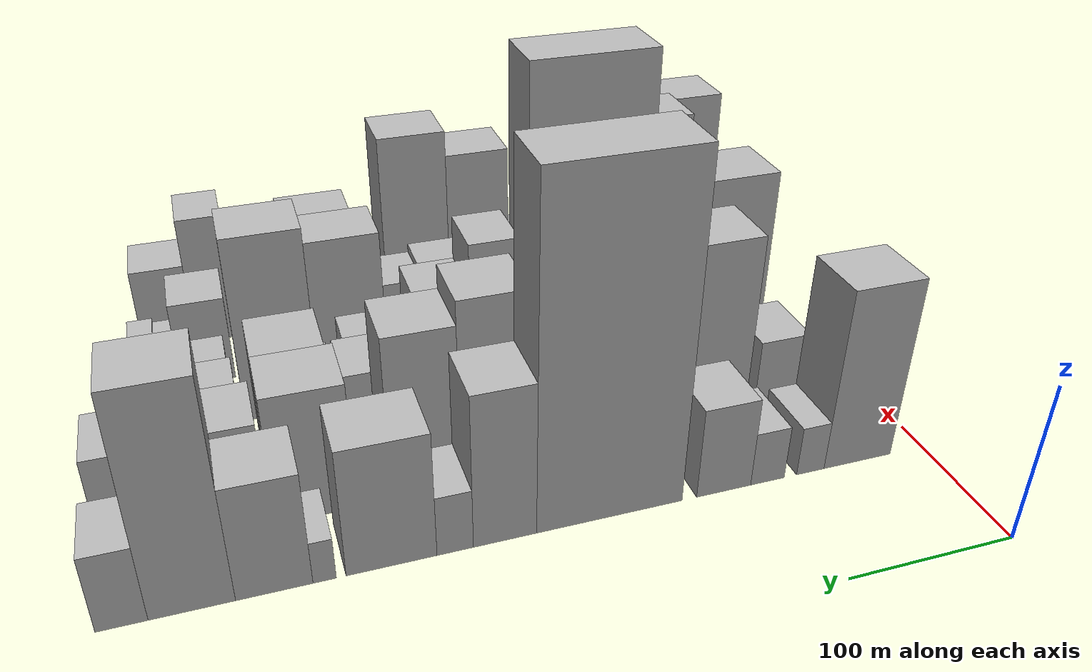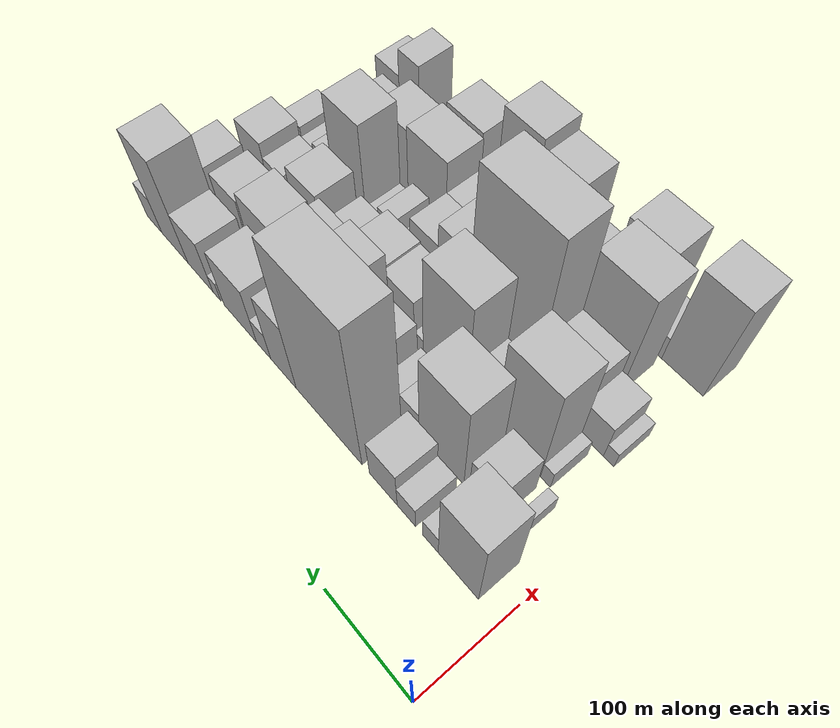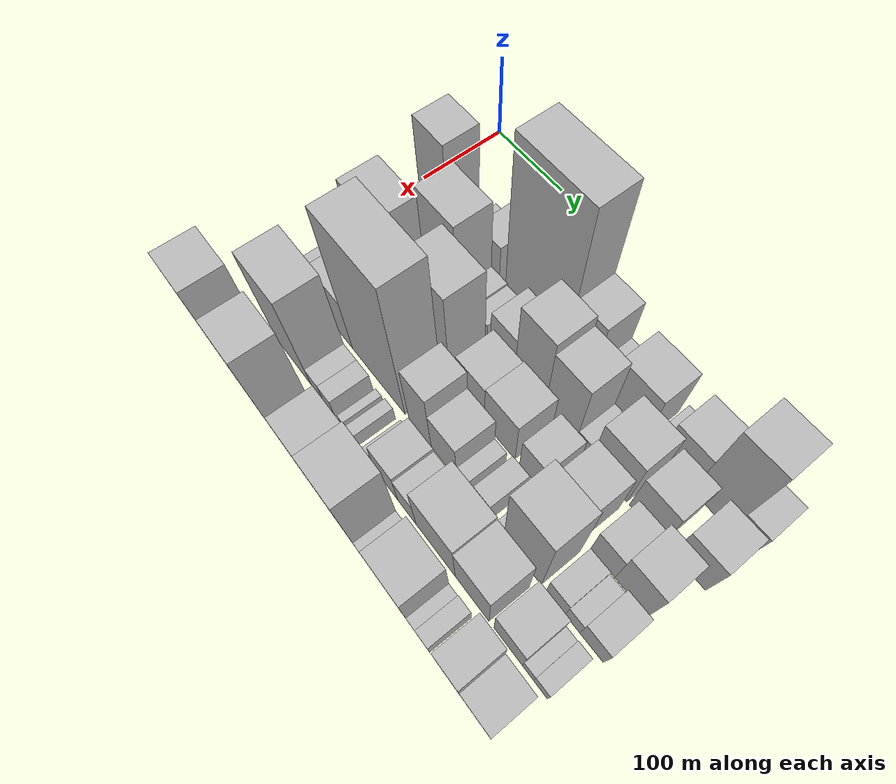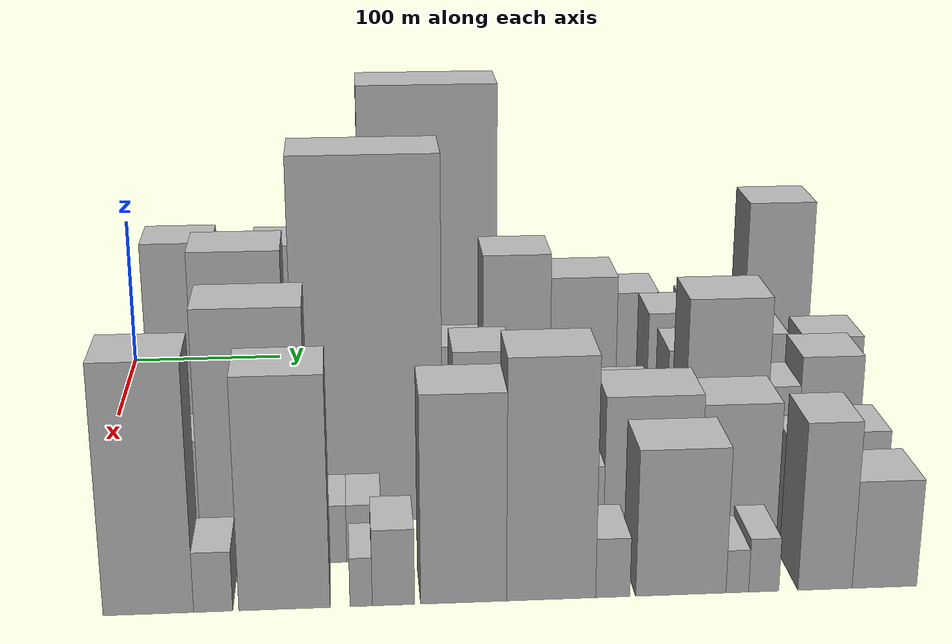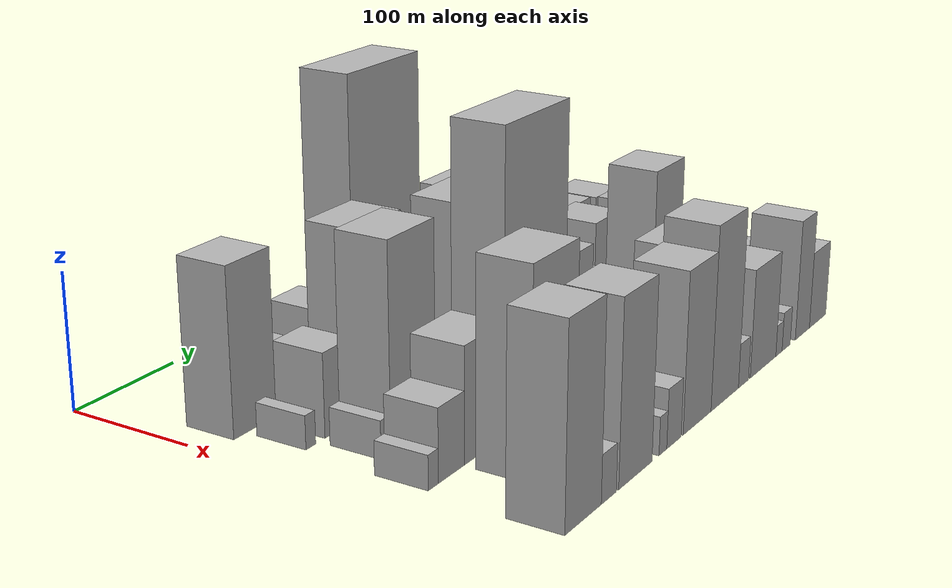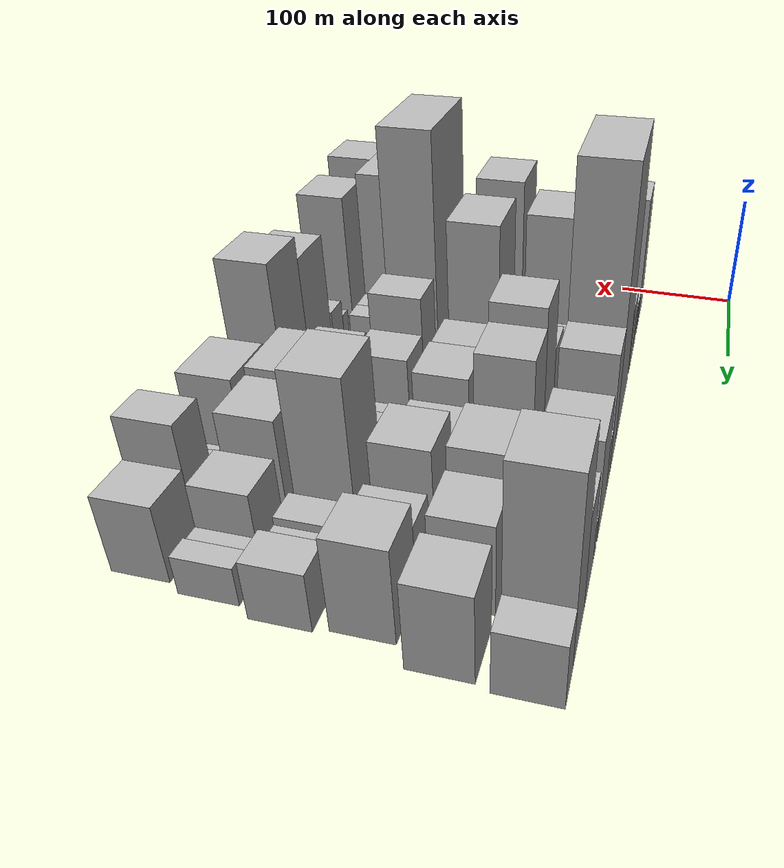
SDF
<sdf version="1.6">
 <world name="default">
  <model name="building_26">
   <static>1</static>
   <pose>100.0000 44.2382 0 0.000000 0.000000 0.000000</pose>
   <link name="link">
    <pose>0 0 60.00 0 0 0</pose>
    <collision name="collision"><geometry><box><size>40.0000 44.2251 120.0000</size></box></geometry></collision>
    <visual name="visual">
     <cast_shadows>0</cast_shadows>
     <geometry><box><size>40.0000 44.2251 120.0000</size></box></geometry>
     <material>
      <script>
       <uri>model://HANNAS_wall/materials/scripts</uri>
       <uri>model://HANNAS_wall/materials/textures</uri>
       <name>vrc/HANNAS_wall</name>
      </script>
     </material>
    </visual>
   </link>
  </model>
  <model name="building_27">
   <static>1</static>
   <pose>100.0000 75.2839 0 0.000000 0.000000 0.000000</pose>
   <link name="link">
    <pose>0 0 16.50 0 0 0</pose>
    <collision name="collision"><geometry><box><size>40.0000 17.8664 33.0000</size></box></geometry></collision>
    <visual name="visual">
     <cast_shadows>0</cast_shadows>
     <geometry><box><size>40.0000 17.8664 33.0000</size></box></geometry>
     <material>
      <script>
       <uri>model://HANNAS_wall/materials/scripts</uri>
       <uri>model://HANNAS_wall/materials/textures</uri>
       <name>vrc/HANNAS_wall</name>
      </script>
     </material>
    </visual>
   </link>
  </model>
  <model name="building_28">
   <static>1</static>
   <pose>100.0000 102.9447 0 0.000000 0.000000 0.000000</pose>
   <link name="link">
    <pose>0 0 18.00 0 0 0</pose>
    <collision name="collision"><geometry><box><size>40.0000 21.4551 36.0000</size></box></geometry></collision>
    <visual name="visual">
     <cast_shadows>0</cast_shadows>
     <geometry><box><size>40.0000 21.4551 36.0000</size></box></geometry>
     <material>
      <script>
       <uri>model://HANNAS_wall/materials/scripts</uri>
       <uri>model://HANNAS_wall/materials/textures</uri>
       <name>vrc/HANNAS_wall</name>
      </script>
     </material>
    </visual>
   </link>
  </model>
  <model name="building_29">
   <static>1</static>
   <pose>100.0000 130.4869 0 0.000000 0.000000 0.000000</pose>
   <link name="link">
    <pose>0 0 30.00 0 0 0</pose>
    <collision name="collision"><geometry><box><size>40.0000 33.6293 60.0000</size></box></geometry></collision>
    <visual name="visual">
     <cast_shadows>0</cast_shadows>
     <geometry><box><size>40.0000 33.6293 60.0000</size></box></geometry>
     <material>
      <script>
       <uri>model://HANNAS_wall/materials/scripts</uri>
       <uri>model://HANNAS_wall/materials/textures</uri>
       <name>vrc/HANNAS_wall</name>
      </script>
     </material>
    </visual>
   </link>
  </model>
  <model name="building_30">
   <static>1</static>
   <pose>100.0000 199.0506 0 0.000000 0.000000 0.000000</pose>
   <link name="link">
    <pose>0 0 108.00 0 0 0</pose>
    <collision name="collision"><geometry><box><size>40.0000 85.4979 216.0000</size></box></geometry></collision>
    <visual name="visual">
     <cast_shadows>0</cast_shadows>
     <geometry><box><size>40.0000 85.4979 216.0000</size></box></geometry>
     <material>
      <script>
       <uri>model://HANNAS_wall/materials/scripts</uri>
       <uri>model://HANNAS_wall/materials/textures</uri>
       <name>vrc/HANNAS_wall</name>
      </script>
     </material>
    </visual>
   </link>
  </model>
  <model name="building_31">
   <static>1</static>
   <pose>100.0000 259.4269 0 0.000000 0.000000 0.000000</pose>
   <link name="link">
    <pose>0 0 49.50 0 0 0</pose>
    <collision name="collision"><geometry><box><size>40.0000 35.2547 99.0000</size></box></geometry></collision>
    <visual name="visual">
     <cast_shadows>0</cast_shadows>
     <geometry><box><size>40.0000 35.2547 99.0000</size></box></geometry>
     <material>
      <script>
       <uri>model://HANNAS_wall/materials/scripts</uri>
       <uri>model://HANNAS_wall/materials/textures</uri>
       <name>vrc/HANNAS_wall</name>
      </script>
     </material>
    </visual>
   </link>
  </model>
  <model name="building_32">
   <static>1</static>
   <pose>100.0000 286.9620 0 0.000000 0.000000 0.000000</pose>
   <link name="link">
    <pose>0 0 19.50 0 0 0</pose>
    <collision name="collision"><geometry><box><size>40.0000 19.8156 39.0000</size></box></geometry></collision>
    <visual name="visual">
     <cast_shadows>0</cast_shadows>
     <geometry><box><size>40.0000 19.8156 39.0000</size></box></geometry>
     <material>
      <script>
       <uri>model://HANNAS_wall/materials/scripts</uri>
       <uri>model://HANNAS_wall/materials/textures</uri>
       <name>vrc/HANNAS_wall</name>
      </script>
     </material>
    </visual>
   </link>
  </model>
  <model name="building_33">
   <static>1</static>
   <pose>100.0000 320.8729 0 0.000000 0.000000 0.000000</pose>
   <link name="link">
    <pose>0 0 40.50 0 0 0</pose>
    <collision name="collision"><geometry><box><size>40.0000 48.0063 81.0000</size></box></geometry></collision>
    <visual name="visual">
     <cast_shadows>0</cast_shadows>
     <geometry><box><size>40.0000 48.0063 81.0000</size></box></geometry>
     <material>
      <script>
       <uri>model://HANNAS_wall/materials/scripts</uri>
       <uri>model://HANNAS_wall/materials/textures</uri>
       <name>vrc/HANNAS_wall</name>
      </script>
     </material>
    </visual>
   </link>
  </model>
  <model name="building_34">
   <static>1</static>
   <pose>100.0000 355.8433 0 0.000000 0.000000 0.000000</pose>
   <link name="link">
    <pose>0 0 13.50 0 0 0</pose>
    <collision name="collision"><geometry><box><size>40.0000 11.9346 27.0000</size></box></geometry></collision>
    <visual name="visual">
     <cast_shadows>0</cast_shadows>
     <geometry><box><size>40.0000 11.9346 27.0000</size></box></geometry>
     <material>
      <script>
       <uri>model://HANNAS_wall/materials/scripts</uri>
       <uri>model://HANNAS_wall/materials/textures</uri>
       <name>vrc/HANNAS_wall</name>
      </script>
     </material>
    </visual>
   </link>
  </model>
  <model name="building_35">
   <static>1</static>
   <pose>100.0000 381.1490 0 0.000000 0.000000 0.000000</pose>
   <link name="link">
    <pose>0 0 36.00 0 0 0</pose>
    <collision name="collision"><geometry><box><size>40.0000 38.6768 72.0000</size></box></geometry></collision>
    <visual name="visual">
     <cast_shadows>0</cast_shadows>
     <geometry><box><size>40.0000 38.6768 72.0000</size></box></geometry>
     <material>
      <script>
       <uri>model://HANNAS_wall/materials/scripts</uri>
       <uri>model://HANNAS_wall/materials/textures</uri>
       <name>vrc/HANNAS_wall</name>
      </script>
     </material>
    </visual>
   </link>
  </model>
  <model name="building_36">
   <static>1</static>
   <pose>100.0000 421.5169 0 0.000000 0.000000 0.000000</pose>
   <link name="link">
    <pose>0 0 69.00 0 0 0</pose>
    <collision name="collision"><geometry><box><size>40.0000 42.0590 138.0000</size></box></geometry></collision>
    <visual name="visual">
     <cast_shadows>0</cast_shadows>
     <geometry><box><size>40.0000 42.0590 138.0000</size></box></geometry>
     <material>
      <script>
       <uri>model://HANNAS_wall/materials/scripts</uri>
       <uri>model://HANNAS_wall/materials/textures</uri>
       <name>vrc/HANNAS_wall</name>
      </script>
     </material>
    </visual>
   </link>
  </model>
  <model name="building_37">
   <static>1</static>
   <pose>100.0000 454.9248 0 0.000000 0.000000 0.000000</pose>
   <link name="link">
    <pose>0 0 24.00 0 0 0</pose>
    <collision name="collision"><geometry><box><size>40.0000 24.7566 48.0000</size></box></geometry></collision>
    <visual name="visual">
     <cast_shadows>0</cast_shadows>
     <geometry><box><size>40.0000 24.7566 48.0000</size></box></geometry>
     <material>
      <script>
       <uri>model://HANNAS_wall/materials/scripts</uri>
       <uri>model://HANNAS_wall/materials/textures</uri>
       <name>vrc/HANNAS_wall</name>
      </script>
     </material>
    </visual>
   </link>
  </model>
  <model name="building_72">
   <static>1</static>
   <pose>149.0000 39.9696 0 0.000000 0.000000 0.000000</pose>
   <link name="link">
    <pose>0 0 12.00 0 0 0</pose>
    <collision name="collision"><geometry><box><size>40.0000 10.4345 24.0000</size></box></geometry></collision>
    <visual name="visual">
     <cast_shadows>0</cast_shadows>
     <geometry><box><size>40.0000 10.4345 24.0000</size></box></geometry>
     <material>
      <script>
       <uri>model://HANNAS_wall/materials/scripts</uri>
       <uri>model://HANNAS_wall/materials/textures</uri>
       <name>vrc/HANNAS_wall</name>
      </script>
     </material>
    </visual>
   </link>
  </model>
  <model name="building_73">
   <static>1</static>
   <pose>149.0000 71.1524 0 0.000000 0.000000 0.000000</pose>
   <link name="link">
    <pose>0 0 30.00 0 0 0</pose>
    <collision name="collision"><geometry><box><size>40.0000 31.9312 60.0000</size></box></geometry></collision>
    <visual name="visual">
     <cast_shadows>0</cast_shadows>
     <geometry><box><size>40.0000 31.9312 60.0000</size></box></geometry>
     <material>
      <script>
       <uri>model://HANNAS_wall/materials/scripts</uri>
       <uri>model://HANNAS_wall/materials/textures</uri>
       <name>vrc/HANNAS_wall</name>
      </script>
     </material>
    </visual>
   </link>
  </model>
  <model name="building_74">
   <static>1</static>
   <pose>149.0000 119.4645 0 0.000000 0.000000 0.000000</pose>
   <link name="link">
    <pose>0 0 66.00 0 0 0</pose>
    <collision name="collision"><geometry><box><size>40.0000 52.6929 132.0000</size></box></geometry></collision>
    <visual name="visual">
     <cast_shadows>0</cast_shadows>
     <geometry><box><size>40.0000 52.6929 132.0000</size></box></geometry>
     <material>
      <script>
       <uri>model://HANNAS_wall/materials/scripts</uri>
       <uri>model://HANNAS_wall/materials/textures</uri>
       <name>vrc/HANNAS_wall</name>
      </script>
     </material>
    </visual>
   </link>
  </model>
  <model name="building_75">
   <static>1</static>
   <pose>149.0000 157.3110 0 0.000000 0.000000 0.000000</pose>
   <link name="link">
    <pose>0 0 19.50 0 0 0</pose>
    <collision name="collision"><geometry><box><size>40.0000 23.0002 39.0000</size></box></geometry></collision>
    <visual name="visual">
     <cast_shadows>0</cast_shadows>
     <geometry><box><size>40.0000 23.0002 39.0000</size></box></geometry>
     <material>
      <script>
       <uri>model://HANNAS_wall/materials/scripts</uri>
       <uri>model://HANNAS_wall/materials/textures</uri>
       <name>vrc/HANNAS_wall</name>
      </script>
     </material>
    </visual>
   </link>
  </model>
  <model name="building_76">
   <static>1</static>
   <pose>149.0000 179.4420 0 0.000000 0.000000 0.000000</pose>
   <link name="link">
    <pose>0 0 18.00 0 0 0</pose>
    <collision name="collision"><geometry><box><size>40.0000 21.2617 36.0000</size></box></geometry></collision>
    <visual name="visual">
     <cast_shadows>0</cast_shadows>
     <geometry><box><size>40.0000 21.2617 36.0000</size></box></geometry>
     <material>
      <script>
       <uri>model://HANNAS_wall/materials/scripts</uri>
       <uri>model://HANNAS_wall/materials/textures</uri>
       <name>vrc/HANNAS_wall</name>
      </script>
     </material>
    </visual>
   </link>
  </model>
  <model name="building_77">
   <static>1</static>
   <pose>149.0000 212.1974 0 0.000000 0.000000 0.000000</pose>
   <link name="link">
    <pose>0 0 33.00 0 0 0</pose>
    <collision name="collision"><geometry><box><size>40.0000 34.2491 66.0000</size></box></geometry></collision>
    <visual name="visual">
     <cast_shadows>0</cast_shadows>
     <geometry><box><size>40.0000 34.2491 66.0000</size></box></geometry>
     <material>
      <script>
       <uri>model://HANNAS_wall/materials/scripts</uri>
       <uri>model://HANNAS_wall/materials/textures</uri>
       <name>vrc/HANNAS_wall</name>
      </script>
     </material>
    </visual>
   </link>
  </model>
  <model name="building_78">
   <static>1</static>
   <pose>149.0000 249.8704 0 0.000000 0.000000 0.000000</pose>
   <link name="link">
    <pose>0 0 61.50 0 0 0</pose>
    <collision name="collision"><geometry><box><size>40.0000 41.0969 123.0000</size></box></geometry></collision>
    <visual name="visual">
     <cast_shadows>0</cast_shadows>
     <geometry><box><size>40.0000 41.0969 123.0000</size></box></geometry>
     <material>
      <script>
       <uri>model://HANNAS_wall/materials/scripts</uri>
       <uri>model://HANNAS_wall/materials/textures</uri>
       <name>vrc/HANNAS_wall</name>
      </script>
     </material>
    </visual>
   </link>
  </model>
  <model name="building_79">
   <static>1</static>
   <pose>149.0000 290.5923 0 0.000000 0.000000 0.000000</pose>
   <link name="link">
    <pose>0 0 54.00 0 0 0</pose>
    <collision name="collision"><geometry><box><size>40.0000 40.3469 108.0000</size></box></geometry></collision>
    <visual name="visual">
     <cast_shadows>0</cast_shadows>
     <geometry><box><size>40.0000 40.3469 108.0000</size></box></geometry>
     <material>
      <script>
       <uri>model://HANNAS_wall/materials/scripts</uri>
       <uri>model://HANNAS_wall/materials/textures</uri>
       <name>vrc/HANNAS_wall</name>
      </script>
     </material>
    </visual>
   </link>
  </model>
  <model name="building_80">
   <static>1</static>
   <pose>149.0000 318.9877 0 0.000000 0.000000 0.000000</pose>
   <link name="link">
    <pose>0 0 15.00 0 0 0</pose>
    <collision name="collision"><geometry><box><size>40.0000 16.4439 30.0000</size></box></geometry></collision>
    <visual name="visual">
     <cast_shadows>0</cast_shadows>
     <geometry><box><size>40.0000 16.4439 30.0000</size></box></geometry>
     <material>
      <script>
       <uri>model://HANNAS_wall/materials/scripts</uri>
       <uri>model://HANNAS_wall/materials/textures</uri>
       <name>vrc/HANNAS_wall</name>
      </script>
     </material>
    </visual>
   </link>
  </model>
  <model name="building_81">
   <static>1</static>
   <pose>149.0000 352.4718 0 0.000000 0.000000 0.000000</pose>
   <link name="link">
    <pose>0 0 42.00 0 0 0</pose>
    <collision name="collision"><geometry><box><size>40.0000 44.5243 84.0000</size></box></geometry></collision>
    <visual name="visual">
     <cast_shadows>0</cast_shadows>
     <geometry><box><size>40.0000 44.5243 84.0000</size></box></geometry>
     <material>
      <script>
       <uri>model://HANNAS_wall/materials/scripts</uri>
       <uri>model://HANNAS_wall/materials/textures</uri>
       <name>vrc/HANNAS_wall</name>
      </script>
     </material>
    </visual>
   </link>
  </model>
  <model name="building_82">
   <static>1</static>
   <pose>149.0000 397.2652 0 0.000000 0.000000 0.000000</pose>
   <link name="link">
    <pose>0 0 34.50 0 0 0</pose>
    <collision name="collision"><geometry><box><size>40.0000 39.0626 69.0000</size></box></geometry></collision>
    <visual name="visual">
     <cast_shadows>0</cast_shadows>
     <geometry><box><size>40.0000 39.0626 69.0000</size></box></geometry>
     <material>
      <script>
       <uri>model://HANNAS_wall/materials/scripts</uri>
       <uri>model://HANNAS_wall/materials/textures</uri>
       <name>vrc/HANNAS_wall</name>
      </script>
     </material>
    </visual>
   </link>
  </model>
  <model name="building_83">
   <static>1</static>
   <pose>149.0000 445.3738 0 0.000000 0.000000 0.000000</pose>
   <link name="link">
    <pose>0 0 33.00 0 0 0</pose>
    <collision name="collision"><geometry><box><size>40.0000 37.1547 66.0000</size></box></geometry></collision>
    <visual name="visual">
     <cast_shadows>0</cast_shadows>
     <geometry><box><size>40.0000 37.1547 66.0000</size></box></geometry>
     <material>
      <script>
       <uri>model://HANNAS_wall/materials/scripts</uri>
       <uri>model://HANNAS_wall/materials/textures</uri>
       <name>vrc/HANNAS_wall</name>
      </script>
     </material>
    </visual>
   </link>
  </model>
  <model name="building_121">
   <static>1</static>
   <pose>198.0000 54.0162 0 0.000000 0.000000 0.000000</pose>
   <link name="link">
    <pose>0 0 13.50 0 0 0</pose>
    <collision name="collision"><geometry><box><size>40.0000 10.9247 27.0000</size></box></geometry></collision>
    <visual name="visual">
     <cast_shadows>0</cast_shadows>
     <geometry><box><size>40.0000 10.9247 27.0000</size></box></geometry>
     <material>
      <script>
       <uri>model://HANNAS_wall/materials/scripts</uri>
       <uri>model://HANNAS_wall/materials/textures</uri>
       <name>vrc/HANNAS_wall</name>
      </script>
     </material>
    </visual>
   </link>
  </model>
  <model name="building_122">
   <static>1</static>
   <pose>198.0000 85.5409 0 0.000000 0.000000 0.000000</pose>
   <link name="link">
    <pose>0 0 72.00 0 0 0</pose>
    <collision name="collision"><geometry><box><size>40.0000 52.1247 144.0000</size></box></geometry></collision>
    <visual name="visual">
     <cast_shadows>0</cast_shadows>
     <geometry><box><size>40.0000 52.1247 144.0000</size></box></geometry>
     <material>
      <script>
       <uri>model://HANNAS_wall/materials/scripts</uri>
       <uri>model://HANNAS_wall/materials/textures</uri>
       <name>vrc/HANNAS_wall</name>
      </script>
     </material>
    </visual>
   </link>
  </model>
  <model name="building_123">
   <static>1</static>
   <pose>198.0000 128.0849 0 0.000000 0.000000 0.000000</pose>
   <link name="link">
    <pose>0 0 28.50 0 0 0</pose>
    <collision name="collision"><geometry><box><size>40.0000 32.9634 57.0000</size></box></geometry></collision>
    <visual name="visual">
     <cast_shadows>0</cast_shadows>
     <geometry><box><size>40.0000 32.9634 57.0000</size></box></geometry>
     <material>
      <script>
       <uri>model://HANNAS_wall/materials/scripts</uri>
       <uri>model://HANNAS_wall/materials/textures</uri>
       <name>vrc/HANNAS_wall</name>
      </script>
     </material>
    </visual>
   </link>
  </model>
  <model name="building_124">
   <static>1</static>
   <pose>198.0000 171.6224 0 0.000000 0.000000 0.000000</pose>
   <link name="link">
    <pose>0 0 72.00 0 0 0</pose>
    <collision name="collision"><geometry><box><size>40.0000 54.1117 144.0000</size></box></geometry></collision>
    <visual name="visual">
     <cast_shadows>0</cast_shadows>
     <geometry><box><size>40.0000 54.1117 144.0000</size></box></geometry>
     <material>
      <script>
       <uri>model://HANNAS_wall/materials/scripts</uri>
       <uri>model://HANNAS_wall/materials/textures</uri>
       <name>vrc/HANNAS_wall</name>
      </script>
     </material>
    </visual>
   </link>
  </model>
  <model name="building_125">
   <static>1</static>
   <pose>198.0000 204.1205 0 0.000000 0.000000 0.000000</pose>
   <link name="link">
    <pose>0 0 12.00 0 0 0</pose>
    <collision name="collision"><geometry><box><size>40.0000 10.8845 24.0000</size></box></geometry></collision>
    <visual name="visual">
     <cast_shadows>0</cast_shadows>
     <geometry><box><size>40.0000 10.8845 24.0000</size></box></geometry>
     <material>
      <script>
       <uri>model://HANNAS_wall/materials/scripts</uri>
       <uri>model://HANNAS_wall/materials/textures</uri>
       <name>vrc/HANNAS_wall</name>
      </script>
     </material>
    </visual>
   </link>
  </model>
  <model name="building_126">
   <static>1</static>
   <pose>198.0000 228.8530 0 0.000000 0.000000 0.000000</pose>
   <link name="link">
    <pose>0 0 34.50 0 0 0</pose>
    <collision name="collision"><geometry><box><size>40.0000 38.5804 69.0000</size></box></geometry></collision>
    <visual name="visual">
     <cast_shadows>0</cast_shadows>
     <geometry><box><size>40.0000 38.5804 69.0000</size></box></geometry>
     <material>
      <script>
       <uri>model://HANNAS_wall/materials/scripts</uri>
       <uri>model://HANNAS_wall/materials/textures</uri>
       <name>vrc/HANNAS_wall</name>
      </script>
     </material>
    </visual>
   </link>
  </model>
  <model name="building_127">
   <static>1</static>
   <pose>198.0000 268.8048 0 0.000000 0.000000 0.000000</pose>
   <link name="link">
    <pose>0 0 36.00 0 0 0</pose>
    <collision name="collision"><geometry><box><size>40.0000 41.3231 72.0000</size></box></geometry></collision>
    <visual name="visual">
     <cast_shadows>0</cast_shadows>
     <geometry><box><size>40.0000 41.3231 72.0000</size></box></geometry>
     <material>
      <script>
       <uri>model://HANNAS_wall/materials/scripts</uri>
       <uri>model://HANNAS_wall/materials/textures</uri>
       <name>vrc/HANNAS_wall</name>
      </script>
     </material>
    </visual>
   </link>
  </model>
  <model name="building_128">
   <static>1</static>
   <pose>198.0000 310.6774 0 0.000000 0.000000 0.000000</pose>
   <link name="link">
    <pose>0 0 27.00 0 0 0</pose>
    <collision name="collision"><geometry><box><size>40.0000 30.4222 54.0000</size></box></geometry></collision>
    <visual name="visual">
     <cast_shadows>0</cast_shadows>
     <geometry><box><size>40.0000 30.4222 54.0000</size></box></geometry>
     <material>
      <script>
       <uri>model://HANNAS_wall/materials/scripts</uri>
       <uri>model://HANNAS_wall/materials/textures</uri>
       <name>vrc/HANNAS_wall</name>
      </script>
     </material>
    </visual>
   </link>
  </model>
  <model name="building_129">
   <static>1</static>
   <pose>198.0000 354.2839 0 0.000000 0.000000 0.000000</pose>
   <link name="link">
    <pose>0 0 39.00 0 0 0</pose>
    <collision name="collision"><geometry><box><size>40.0000 40.7909 78.0000</size></box></geometry></collision>
    <visual name="visual">
     <cast_shadows>0</cast_shadows>
     <geometry><box><size>40.0000 40.7909 78.0000</size></box></geometry>
     <material>
      <script>
       <uri>model://HANNAS_wall/materials/scripts</uri>
       <uri>model://HANNAS_wall/materials/textures</uri>
       <name>vrc/HANNAS_wall</name>
      </script>
     </material>
    </visual>
   </link>
  </model>
  <model name="building_130">
   <static>1</static>
   <pose>198.0000 398.8235 0 0.000000 0.000000 0.000000</pose>
   <link name="link">
    <pose>0 0 27.00 0 0 0</pose>
    <collision name="collision"><geometry><box><size>40.0000 28.2882 54.0000</size></box></geometry></collision>
    <visual name="visual">
     <cast_shadows>0</cast_shadows>
     <geometry><box><size>40.0000 28.2882 54.0000</size></box></geometry>
     <material>
      <script>
       <uri>model://HANNAS_wall/materials/scripts</uri>
       <uri>model://HANNAS_wall/materials/textures</uri>
       <name>vrc/HANNAS_wall</name>
      </script>
     </material>
    </visual>
   </link>
  </model>
  <model name="building_131">
   <static>1</static>
   <pose>198.0000 431.4522 0 0.000000 0.000000 0.000000</pose>
   <link name="link">
    <pose>0 0 36.00 0 0 0</pose>
    <collision name="collision"><geometry><box><size>40.0000 36.9694 72.0000</size></box></geometry></collision>
    <visual name="visual">
     <cast_shadows>0</cast_shadows>
     <geometry><box><size>40.0000 36.9694 72.0000</size></box></geometry>
     <material>
      <script>
       <uri>model://HANNAS_wall/materials/scripts</uri>
       <uri>model://HANNAS_wall/materials/textures</uri>
       <name>vrc/HANNAS_wall</name>
      </script>
     </material>
    </visual>
   </link>
  </model>
  <model name="building_170">
   <static>1</static>
   <pose>247.0000 34.1251 0 0.000000 0.000000 0.000000</pose>
   <link name="link">
    <pose>0 0 12.00 0 0 0</pose>
    <collision name="collision"><geometry><box><size>40.0000 11.2859 24.0000</size></box></geometry></collision>
    <visual name="visual">
     <cast_shadows>0</cast_shadows>
     <geometry><box><size>40.0000 11.2859 24.0000</size></box></geometry>
     <material>
      <script>
       <uri>model://HANNAS_wall/materials/scripts</uri>
       <uri>model://HANNAS_wall/materials/textures</uri>
       <name>vrc/HANNAS_wall</name>
      </script>
     </material>
    </visual>
   </link>
  </model>
  <model name="building_171">
   <static>1</static>
   <pose>247.0000 54.7830 0 0.000000 0.000000 0.000000</pose>
   <link name="link">
    <pose>0 0 25.50 0 0 0</pose>
    <collision name="collision"><geometry><box><size>40.0000 30.0299 51.0000</size></box></geometry></collision>
    <visual name="visual">
     <cast_shadows>0</cast_shadows>
     <geometry><box><size>40.0000 30.0299 51.0000</size></box></geometry>
     <material>
      <script>
       <uri>model://HANNAS_wall/materials/scripts</uri>
       <uri>model://HANNAS_wall/materials/textures</uri>
       <name>vrc/HANNAS_wall</name>
      </script>
     </material>
    </visual>
   </link>
  </model>
  <model name="building_172">
   <static>1</static>
   <pose>247.0000 93.7772 0 0.000000 0.000000 0.000000</pose>
   <link name="link">
    <pose>0 0 40.50 0 0 0</pose>
    <collision name="collision"><geometry><box><size>40.0000 47.9586 81.0000</size></box></geometry></collision>
    <visual name="visual">
     <cast_shadows>0</cast_shadows>
     <geometry><box><size>40.0000 47.9586 81.0000</size></box></geometry>
     <material>
      <script>
       <uri>model://HANNAS_wall/materials/scripts</uri>
       <uri>model://HANNAS_wall/materials/textures</uri>
       <name>vrc/HANNAS_wall</name>
      </script>
     </material>
    </visual>
   </link>
  </model>
  <model name="building_173">
   <static>1</static>
   <pose>247.0000 158.3695 0 0.000000 0.000000 0.000000</pose>
   <link name="link">
    <pose>0 0 105.00 0 0 0</pose>
    <collision name="collision"><geometry><box><size>40.0000 81.2261 210.0000</size></box></geometry></collision>
    <visual name="visual">
     <cast_shadows>0</cast_shadows>
     <geometry><box><size>40.0000 81.2261 210.0000</size></box></geometry>
     <material>
      <script>
       <uri>model://HANNAS_wall/materials/scripts</uri>
       <uri>model://HANNAS_wall/materials/textures</uri>
       <name>vrc/HANNAS_wall</name>
      </script>
     </material>
    </visual>
   </link>
  </model>
  <model name="building_174">
   <static>1</static>
   <pose>247.0000 221.1196 0 0.000000 0.000000 0.000000</pose>
   <link name="link">
    <pose>0 0 49.50 0 0 0</pose>
    <collision name="collision"><geometry><box><size>40.0000 32.2741 99.0000</size></box></geometry></collision>
    <visual name="visual">
     <cast_shadows>0</cast_shadows>
     <geometry><box><size>40.0000 32.2741 99.0000</size></box></geometry>
     <material>
      <script>
       <uri>model://HANNAS_wall/materials/scripts</uri>
       <uri>model://HANNAS_wall/materials/textures</uri>
       <name>vrc/HANNAS_wall</name>
      </script>
     </material>
    </visual>
   </link>
  </model>
  <model name="building_175">
   <static>1</static>
   <pose>247.0000 255.0591 0 0.000000 0.000000 0.000000</pose>
   <link name="link">
    <pose>0 0 34.50 0 0 0</pose>
    <collision name="collision"><geometry><box><size>40.0000 35.6047 69.0000</size></box></geometry></collision>
    <visual name="visual">
     <cast_shadows>0</cast_shadows>
     <geometry><box><size>40.0000 35.6047 69.0000</size></box></geometry>
     <material>
      <script>
       <uri>model://HANNAS_wall/materials/scripts</uri>
       <uri>model://HANNAS_wall/materials/textures</uri>
       <name>vrc/HANNAS_wall</name>
      </script>
     </material>
    </visual>
   </link>
  </model>
  <model name="building_176">
   <static>1</static>
   <pose>247.0000 280.5952 0 0.000000 0.000000 0.000000</pose>
   <link name="link">
    <pose>0 0 15.00 0 0 0</pose>
    <collision name="collision"><geometry><box><size>40.0000 15.4675 30.0000</size></box></geometry></collision>
    <visual name="visual">
     <cast_shadows>0</cast_shadows>
     <geometry><box><size>40.0000 15.4675 30.0000</size></box></geometry>
     <material>
      <script>
       <uri>model://HANNAS_wall/materials/scripts</uri>
       <uri>model://HANNAS_wall/materials/textures</uri>
       <name>vrc/HANNAS_wall</name>
      </script>
     </material>
    </visual>
   </link>
  </model>
  <model name="building_177">
   <static>1</static>
   <pose>247.0000 305.8933 0 0.000000 0.000000 0.000000</pose>
   <link name="link">
    <pose>0 0 19.50 0 0 0</pose>
    <collision name="collision"><geometry><box><size>40.0000 21.1286 39.0000</size></box></geometry></collision>
    <visual name="visual">
     <cast_shadows>0</cast_shadows>
     <geometry><box><size>40.0000 21.1286 39.0000</size></box></geometry>
     <material>
      <script>
       <uri>model://HANNAS_wall/materials/scripts</uri>
       <uri>model://HANNAS_wall/materials/textures</uri>
       <name>vrc/HANNAS_wall</name>
      </script>
     </material>
    </visual>
   </link>
  </model>
  <model name="building_178">
   <static>1</static>
   <pose>247.0000 329.6236 0 0.000000 0.000000 0.000000</pose>
   <link name="link">
    <pose>0 0 10.50 0 0 0</pose>
    <collision name="collision"><geometry><box><size>40.0000 10.3320 21.0000</size></box></geometry></collision>
    <visual name="visual">
     <cast_shadows>0</cast_shadows>
     <geometry><box><size>40.0000 10.3320 21.0000</size></box></geometry>
     <material>
      <script>
       <uri>model://HANNAS_wall/materials/scripts</uri>
       <uri>model://HANNAS_wall/materials/textures</uri>
       <name>vrc/HANNAS_wall</name>
      </script>
     </material>
    </visual>
   </link>
  </model>
  <model name="building_179">
   <static>1</static>
   <pose>247.0000 357.9925 0 0.000000 0.000000 0.000000</pose>
   <link name="link">
    <pose>0 0 63.00 0 0 0</pose>
    <collision name="collision"><geometry><box><size>40.0000 46.4057 126.0000</size></box></geometry></collision>
    <visual name="visual">
     <cast_shadows>0</cast_shadows>
     <geometry><box><size>40.0000 46.4057 126.0000</size></box></geometry>
     <material>
      <script>
       <uri>model://HANNAS_wall/materials/scripts</uri>
       <uri>model://HANNAS_wall/materials/textures</uri>
       <name>vrc/HANNAS_wall</name>
      </script>
     </material>
    </visual>
   </link>
  </model>
  <model name="building_180">
   <static>1</static>
   <pose>247.0000 398.4443 0 0.000000 0.000000 0.000000</pose>
   <link name="link">
    <pose>0 0 19.50 0 0 0</pose>
    <collision name="collision"><geometry><box><size>40.0000 22.4980 39.0000</size></box></geometry></collision>
    <visual name="visual">
     <cast_shadows>0</cast_shadows>
     <geometry><box><size>40.0000 22.4980 39.0000</size></box></geometry>
     <material>
      <script>
       <uri>model://HANNAS_wall/materials/scripts</uri>
       <uri>model://HANNAS_wall/materials/textures</uri>
       <name>vrc/HANNAS_wall</name>
      </script>
     </material>
    </visual>
   </link>
  </model>
  <model name="building_181">
   <static>1</static>
   <pose>247.0000 418.0349 0 0.000000 0.000000 0.000000</pose>
   <link name="link">
    <pose>0 0 16.50 0 0 0</pose>
    <collision name="collision"><geometry><box><size>40.0000 16.6831 33.0000</size></box></geometry></collision>
    <visual name="visual">
     <cast_shadows>0</cast_shadows>
     <geometry><box><size>40.0000 16.6831 33.0000</size></box></geometry>
     <material>
      <script>
       <uri>model://HANNAS_wall/materials/scripts</uri>
       <uri>model://HANNAS_wall/materials/textures</uri>
       <name>vrc/HANNAS_wall</name>
      </script>
     </material>
    </visual>
   </link>
  </model>
  <model name="building_182">
   <static>1</static>
   <pose>247.0000 439.6375 0 0.000000 0.000000 0.000000</pose>
   <link name="link">
    <pose>0 0 22.50 0 0 0</pose>
    <collision name="collision"><geometry><box><size>40.0000 26.5220 45.0000</size></box></geometry></collision>
    <visual name="visual">
     <cast_shadows>0</cast_shadows>
     <geometry><box><size>40.0000 26.5220 45.0000</size></box></geometry>
     <material>
      <script>
       <uri>model://HANNAS_wall/materials/scripts</uri>
       <uri>model://HANNAS_wall/materials/textures</uri>
       <name>vrc/HANNAS_wall</name>
      </script>
     </material>
    </visual>
   </link>
  </model>
  <model name="building_220">
   <static>1</static>
   <pose>296.0000 97.0826 0 0.000000 0.000000 0.000000</pose>
   <link name="link">
    <pose>0 0 72.00 0 0 0</pose>
    <collision name="collision"><geometry><box><size>40.0000 56.8154 144.0000</size></box></geometry></collision>
    <visual name="visual">
     <cast_shadows>0</cast_shadows>
     <geometry><box><size>40.0000 56.8154 144.0000</size></box></geometry>
     <material>
      <script>
       <uri>model://HANNAS_wall/materials/scripts</uri>
       <uri>model://HANNAS_wall/materials/textures</uri>
       <name>vrc/HANNAS_wall</name>
      </script>
     </material>
    </visual>
   </link>
  </model>
  <model name="building_221">
   <static>1</static>
   <pose>296.0000 135.3702 0 0.000000 0.000000 0.000000</pose>
   <link name="link">
    <pose>0 0 16.50 0 0 0</pose>
    <collision name="collision"><geometry><box><size>40.0000 19.7597 33.0000</size></box></geometry></collision>
    <visual name="visual">
     <cast_shadows>0</cast_shadows>
     <geometry><box><size>40.0000 19.7597 33.0000</size></box></geometry>
     <material>
      <script>
       <uri>model://HANNAS_wall/materials/scripts</uri>
       <uri>model://HANNAS_wall/materials/textures</uri>
       <name>vrc/HANNAS_wall</name>
      </script>
     </material>
    </visual>
   </link>
  </model>
  <model name="building_222">
   <static>1</static>
   <pose>296.0000 154.5468 0 0.000000 0.000000 0.000000</pose>
   <link name="link">
    <pose>0 0 16.50 0 0 0</pose>
    <collision name="collision"><geometry><box><size>40.0000 18.5936 33.0000</size></box></geometry></collision>
    <visual name="visual">
     <cast_shadows>0</cast_shadows>
     <geometry><box><size>40.0000 18.5936 33.0000</size></box></geometry>
     <material>
      <script>
       <uri>model://HANNAS_wall/materials/scripts</uri>
       <uri>model://HANNAS_wall/materials/textures</uri>
       <name>vrc/HANNAS_wall</name>
      </script>
     </material>
    </visual>
   </link>
  </model>
  <model name="building_223">
   <static>1</static>
   <pose>296.0000 175.1823 0 0.000000 0.000000 0.000000</pose>
   <link name="link">
    <pose>0 0 9.00 0 0 0</pose>
    <collision name="collision"><geometry><box><size>40.0000 8.6774 18.0000</size></box></geometry></collision>
    <visual name="visual">
     <cast_shadows>0</cast_shadows>
     <geometry><box><size>40.0000 8.6774 18.0000</size></box></geometry>
     <material>
      <script>
       <uri>model://HANNAS_wall/materials/scripts</uri>
       <uri>model://HANNAS_wall/materials/textures</uri>
       <name>vrc/HANNAS_wall</name>
      </script>
     </material>
    </visual>
   </link>
  </model>
  <model name="building_224">
   <static>1</static>
   <pose>296.0000 191.4687 0 0.000000 0.000000 0.000000</pose>
   <link name="link">
    <pose>0 0 12.00 0 0 0</pose>
    <collision name="collision"><geometry><box><size>40.0000 11.8956 24.0000</size></box></geometry></collision>
    <visual name="visual">
     <cast_shadows>0</cast_shadows>
     <geometry><box><size>40.0000 11.8956 24.0000</size></box></geometry>
     <material>
      <script>
       <uri>model://HANNAS_wall/materials/scripts</uri>
       <uri>model://HANNAS_wall/materials/textures</uri>
       <name>vrc/HANNAS_wall</name>
      </script>
     </material>
    </visual>
   </link>
  </model>
  <model name="building_225">
   <static>1</static>
   <pose>296.0000 211.7931 0 0.000000 0.000000 0.000000</pose>
   <link name="link">
    <pose>0 0 9.00 0 0 0</pose>
    <collision name="collision"><geometry><box><size>40.0000 8.7532 18.0000</size></box></geometry></collision>
    <visual name="visual">
     <cast_shadows>0</cast_shadows>
     <geometry><box><size>40.0000 8.7532 18.0000</size></box></geometry>
     <material>
      <script>
       <uri>model://HANNAS_wall/materials/scripts</uri>
       <uri>model://HANNAS_wall/materials/textures</uri>
       <name>vrc/HANNAS_wall</name>
      </script>
     </material>
    </visual>
   </link>
  </model>
  <model name="building_226">
   <static>1</static>
   <pose>296.0000 240.5442 0 0.000000 0.000000 0.000000</pose>
   <link name="link">
    <pose>0 0 28.50 0 0 0</pose>
    <collision name="collision"><geometry><box><size>40.0000 32.7490 57.0000</size></box></geometry></collision>
    <visual name="visual">
     <cast_shadows>0</cast_shadows>
     <geometry><box><size>40.0000 32.7490 57.0000</size></box></geometry>
     <material>
      <script>
       <uri>model://HANNAS_wall/materials/scripts</uri>
       <uri>model://HANNAS_wall/materials/textures</uri>
       <name>vrc/HANNAS_wall</name>
      </script>
     </material>
    </visual>
   </link>
  </model>
  <model name="building_227">
   <static>1</static>
   <pose>296.0000 269.7926 0 0.000000 0.000000 0.000000</pose>
   <link name="link">
    <pose>0 0 25.50 0 0 0</pose>
    <collision name="collision"><geometry><box><size>40.0000 25.7480 51.0000</size></box></geometry></collision>
    <visual name="visual">
     <cast_shadows>0</cast_shadows>
     <geometry><box><size>40.0000 25.7480 51.0000</size></box></geometry>
     <material>
      <script>
       <uri>model://HANNAS_wall/materials/scripts</uri>
       <uri>model://HANNAS_wall/materials/textures</uri>
       <name>vrc/HANNAS_wall</name>
      </script>
     </material>
    </visual>
   </link>
  </model>
  <model name="building_228">
   <static>1</static>
   <pose>296.0000 308.7418 0 0.000000 0.000000 0.000000</pose>
   <link name="link">
    <pose>0 0 45.00 0 0 0</pose>
    <collision name="collision"><geometry><box><size>40.0000 52.1503 90.0000</size></box></geometry></collision>
    <visual name="visual">
     <cast_shadows>0</cast_shadows>
     <geometry><box><size>40.0000 52.1503 90.0000</size></box></geometry>
     <material>
      <script>
       <uri>model://HANNAS_wall/materials/scripts</uri>
       <uri>model://HANNAS_wall/materials/textures</uri>
       <name>vrc/HANNAS_wall</name>
      </script>
     </material>
    </visual>
   </link>
  </model>
  <model name="building_229">
   <static>1</static>
   <pose>296.0000 355.9424 0 0.000000 0.000000 0.000000</pose>
   <link name="link">
    <pose>0 0 42.00 0 0 0</pose>
    <collision name="collision"><geometry><box><size>40.0000 42.2508 84.0000</size></box></geometry></collision>
    <visual name="visual">
     <cast_shadows>0</cast_shadows>
     <geometry><box><size>40.0000 42.2508 84.0000</size></box></geometry>
     <material>
      <script>
       <uri>model://HANNAS_wall/materials/scripts</uri>
       <uri>model://HANNAS_wall/materials/textures</uri>
       <name>vrc/HANNAS_wall</name>
      </script>
     </material>
    </visual>
   </link>
  </model>
  <model name="building_230">
   <static>1</static>
   <pose>296.0000 400.0493 0 0.000000 0.000000 0.000000</pose>
   <link name="link">
    <pose>0 0 30.00 0 0 0</pose>
    <collision name="collision"><geometry><box><size>40.0000 33.9630 60.0000</size></box></geometry></collision>
    <visual name="visual">
     <cast_shadows>0</cast_shadows>
     <geometry><box><size>40.0000 33.9630 60.0000</size></box></geometry>
     <material>
      <script>
       <uri>model://HANNAS_wall/materials/scripts</uri>
       <uri>model://HANNAS_wall/materials/textures</uri>
       <name>vrc/HANNAS_wall</name>
      </script>
     </material>
    </visual>
   </link>
  </model>
  <model name="building_231">
   <static>1</static>
   <pose>296.0000 423.4547 0 0.000000 0.000000 0.000000</pose>
   <link name="link">
    <pose>0 0 13.50 0 0 0</pose>
    <collision name="collision"><geometry><box><size>40.0000 12.8478 27.0000</size></box></geometry></collision>
    <visual name="visual">
     <cast_shadows>0</cast_shadows>
     <geometry><box><size>40.0000 12.8478 27.0000</size></box></geometry>
     <material>
      <script>
       <uri>model://HANNAS_wall/materials/scripts</uri>
       <uri>model://HANNAS_wall/materials/textures</uri>
       <name>vrc/HANNAS_wall</name>
      </script>
     </material>
    </visual>
   </link>
  </model>
  <model name="building_232">
   <static>1</static>
   <pose>296.0000 437.7123 0 0.000000 0.000000 0.000000</pose>
   <link name="link">
    <pose>0 0 15.00 0 0 0</pose>
    <collision name="collision"><geometry><box><size>40.0000 15.6674 30.0000</size></box></geometry></collision>
    <visual name="visual">
     <cast_shadows>0</cast_shadows>
     <geometry><box><size>40.0000 15.6674 30.0000</size></box></geometry>
     <material>
      <script>
       <uri>model://HANNAS_wall/materials/scripts</uri>
       <uri>model://HANNAS_wall/materials/textures</uri>
       <name>vrc/HANNAS_wall</name>
      </script>
     </material>
    </visual>
   </link>
  </model>
  <model name="building_272">
   <static>1</static>
   <pose>345.0000 45.6377 0 0.000000 0.000000 0.000000</pose>
   <link name="link">
    <pose>0 0 67.50 0 0 0</pose>
    <collision name="collision"><geometry><box><size>40.0000 45.0077 135.0000</size></box></geometry></collision>
    <visual name="visual">
     <cast_shadows>0</cast_shadows>
     <geometry><box><size>40.0000 45.0077 135.0000</size></box></geometry>
     <material>
      <script>
       <uri>model://HANNAS_wall/materials/scripts</uri>
       <uri>model://HANNAS_wall/materials/textures</uri>
       <name>vrc/HANNAS_wall</name>
      </script>
     </material>
    </visual>
   </link>
  </model>
  <model name="building_273">
   <static>1</static>
   <pose>345.0000 77.9031 0 0.000000 0.000000 0.000000</pose>
   <link name="link">
    <pose>0 0 16.50 0 0 0</pose>
    <collision name="collision"><geometry><box><size>40.0000 19.5232 33.0000</size></box></geometry></collision>
    <visual name="visual">
     <cast_shadows>0</cast_shadows>
     <geometry><box><size>40.0000 19.5232 33.0000</size></box></geometry>
     <material>
      <script>
       <uri>model://HANNAS_wall/materials/scripts</uri>
       <uri>model://HANNAS_wall/materials/textures</uri>
       <name>vrc/HANNAS_wall</name>
      </script>
     </material>
    </visual>
   </link>
  </model>
  <model name="building_274">
   <static>1</static>
   <pose>345.0000 113.6010 0 0.000000 0.000000 0.000000</pose>
   <link name="link">
    <pose>0 0 63.00 0 0 0</pose>
    <collision name="collision"><geometry><box><size>40.0000 45.8726 126.0000</size></box></geometry></collision>
    <visual name="visual">
     <cast_shadows>0</cast_shadows>
     <geometry><box><size>40.0000 45.8726 126.0000</size></box></geometry>
     <material>
      <script>
       <uri>model://HANNAS_wall/materials/scripts</uri>
       <uri>model://HANNAS_wall/materials/textures</uri>
       <name>vrc/HANNAS_wall</name>
      </script>
     </material>
    </visual>
   </link>
  </model>
  <model name="building_275">
   <static>1</static>
   <pose>345.0000 152.1728 0 0.000000 0.000000 0.000000</pose>
   <link name="link">
    <pose>0 0 13.50 0 0 0</pose>
    <collision name="collision"><geometry><box><size>40.0000 11.2709 27.0000</size></box></geometry></collision>
    <visual name="visual">
     <cast_shadows>0</cast_shadows>
     <geometry><box><size>40.0000 11.2709 27.0000</size></box></geometry>
     <material>
      <script>
       <uri>model://HANNAS_wall/materials/scripts</uri>
       <uri>model://HANNAS_wall/materials/textures</uri>
       <name>vrc/HANNAS_wall</name>
      </script>
     </material>
    </visual>
   </link>
  </model>
  <model name="building_276">
   <static>1</static>
   <pose>345.0000 168.5522 0 0.000000 0.000000 0.000000</pose>
   <link name="link">
    <pose>0 0 21.00 0 0 0</pose>
    <collision name="collision"><geometry><box><size>40.0000 21.4879 42.0000</size></box></geometry></collision>
    <visual name="visual">
     <cast_shadows>0</cast_shadows>
     <geometry><box><size>40.0000 21.4879 42.0000</size></box></geometry>
     <material>
      <script>
       <uri>model://HANNAS_wall/materials/scripts</uri>
       <uri>model://HANNAS_wall/materials/textures</uri>
       <name>vrc/HANNAS_wall</name>
      </script>
     </material>
    </visual>
   </link>
  </model>
  <model name="building_277">
   <static>1</static>
   <pose>345.0000 204.1498 0 0.000000 0.000000 0.000000</pose>
   <link name="link">
    <pose>0 0 57.00 0 0 0</pose>
    <collision name="collision"><geometry><box><size>40.0000 43.7074 114.0000</size></box></geometry></collision>
    <visual name="visual">
     <cast_shadows>0</cast_shadows>
     <geometry><box><size>40.0000 43.7074 114.0000</size></box></geometry>
     <material>
      <script>
       <uri>model://HANNAS_wall/materials/scripts</uri>
       <uri>model://HANNAS_wall/materials/textures</uri>
       <name>vrc/HANNAS_wall</name>
      </script>
     </material>
    </visual>
   </link>
  </model>
  <model name="building_278">
   <static>1</static>
   <pose>345.0000 248.8945 0 0.000000 0.000000 0.000000</pose>
   <link name="link">
    <pose>0 0 66.00 0 0 0</pose>
    <collision name="collision"><geometry><box><size>40.0000 45.7819 132.0000</size></box></geometry></collision>
    <visual name="visual">
     <cast_shadows>0</cast_shadows>
     <geometry><box><size>40.0000 45.7819 132.0000</size></box></geometry>
     <material>
      <script>
       <uri>model://HANNAS_wall/materials/scripts</uri>
       <uri>model://HANNAS_wall/materials/textures</uri>
       <name>vrc/HANNAS_wall</name>
      </script>
     </material>
    </visual>
   </link>
  </model>
  <model name="building_279">
   <static>1</static>
   <pose>345.0000 280.6151 0 0.000000 0.000000 0.000000</pose>
   <link name="link">
    <pose>0 0 16.50 0 0 0</pose>
    <collision name="collision"><geometry><box><size>40.0000 17.6594 33.0000</size></box></geometry></collision>
    <visual name="visual">
     <cast_shadows>0</cast_shadows>
     <geometry><box><size>40.0000 17.6594 33.0000</size></box></geometry>
     <material>
      <script>
       <uri>model://HANNAS_wall/materials/scripts</uri>
       <uri>model://HANNAS_wall/materials/textures</uri>
       <name>vrc/HANNAS_wall</name>
      </script>
     </material>
    </visual>
   </link>
  </model>
  <model name="building_280">
   <static>1</static>
   <pose>345.0000 315.8379 0 0.000000 0.000000 0.000000</pose>
   <link name="link">
    <pose>0 0 40.50 0 0 0</pose>
    <collision name="collision"><geometry><box><size>40.0000 46.7861 81.0000</size></box></geometry></collision>
    <visual name="visual">
     <cast_shadows>0</cast_shadows>
     <geometry><box><size>40.0000 46.7861 81.0000</size></box></geometry>
     <material>
      <script>
       <uri>model://HANNAS_wall/materials/scripts</uri>
       <uri>model://HANNAS_wall/materials/textures</uri>
       <name>vrc/HANNAS_wall</name>
      </script>
     </material>
    </visual>
   </link>
  </model>
  <model name="building_281">
   <static>1</static>
   <pose>345.0000 345.1507 0 0.000000 0.000000 0.000000</pose>
   <link name="link">
    <pose>0 0 12.00 0 0 0</pose>
    <collision name="collision"><geometry><box><size>40.0000 11.8397 24.0000</size></box></geometry></collision>
    <visual name="visual">
     <cast_shadows>0</cast_shadows>
     <geometry><box><size>40.0000 11.8397 24.0000</size></box></geometry>
     <material>
      <script>
       <uri>model://HANNAS_wall/materials/scripts</uri>
       <uri>model://HANNAS_wall/materials/textures</uri>
       <name>vrc/HANNAS_wall</name>
      </script>
     </material>
    </visual>
   </link>
  </model>
  <model name="building_282">
   <static>1</static>
   <pose>345.0000 358.9391 0 0.000000 0.000000 0.000000</pose>
   <link name="link">
    <pose>0 0 15.00 0 0 0</pose>
    <collision name="collision"><geometry><box><size>40.0000 15.7370 30.0000</size></box></geometry></collision>
    <visual name="visual">
     <cast_shadows>0</cast_shadows>
     <geometry><box><size>40.0000 15.7370 30.0000</size></box></geometry>
     <material>
      <script>
       <uri>model://HANNAS_wall/materials/scripts</uri>
       <uri>model://HANNAS_wall/materials/textures</uri>
       <name>vrc/HANNAS_wall</name>
      </script>
     </material>
    </visual>
   </link>
  </model>
  <model name="building_283">
   <static>1</static>
   <pose>345.0000 391.0138 0 0.000000 0.000000 0.000000</pose>
   <link name="link">
    <pose>0 0 46.50 0 0 0</pose>
    <collision name="collision"><geometry><box><size>40.0000 28.4123 93.0000</size></box></geometry></collision>
    <visual name="visual">
     <cast_shadows>0</cast_shadows>
     <geometry><box><size>40.0000 28.4123 93.0000</size></box></geometry>
     <material>
      <script>
       <uri>model://HANNAS_wall/materials/scripts</uri>
       <uri>model://HANNAS_wall/materials/textures</uri>
       <name>vrc/HANNAS_wall</name>
      </script>
     </material>
    </visual>
   </link>
  </model>
  <model name="building_284">
   <static>1</static>
   <pose>345.0000 422.2427 0 0.000000 0.000000 0.000000</pose>
   <link name="link">
    <pose>0 0 30.00 0 0 0</pose>
    <collision name="collision"><geometry><box><size>40.0000 34.0455 60.0000</size></box></geometry></collision>
    <visual name="visual">
     <cast_shadows>0</cast_shadows>
     <geometry><box><size>40.0000 34.0455 60.0000</size></box></geometry>
     <material>
      <script>
       <uri>model://HANNAS_wall/materials/scripts</uri>
       <uri>model://HANNAS_wall/materials/textures</uri>
       <name>vrc/HANNAS_wall</name>
      </script>
     </material>
    </visual>
   </link>
  </model>
 </world>
</sdf>
